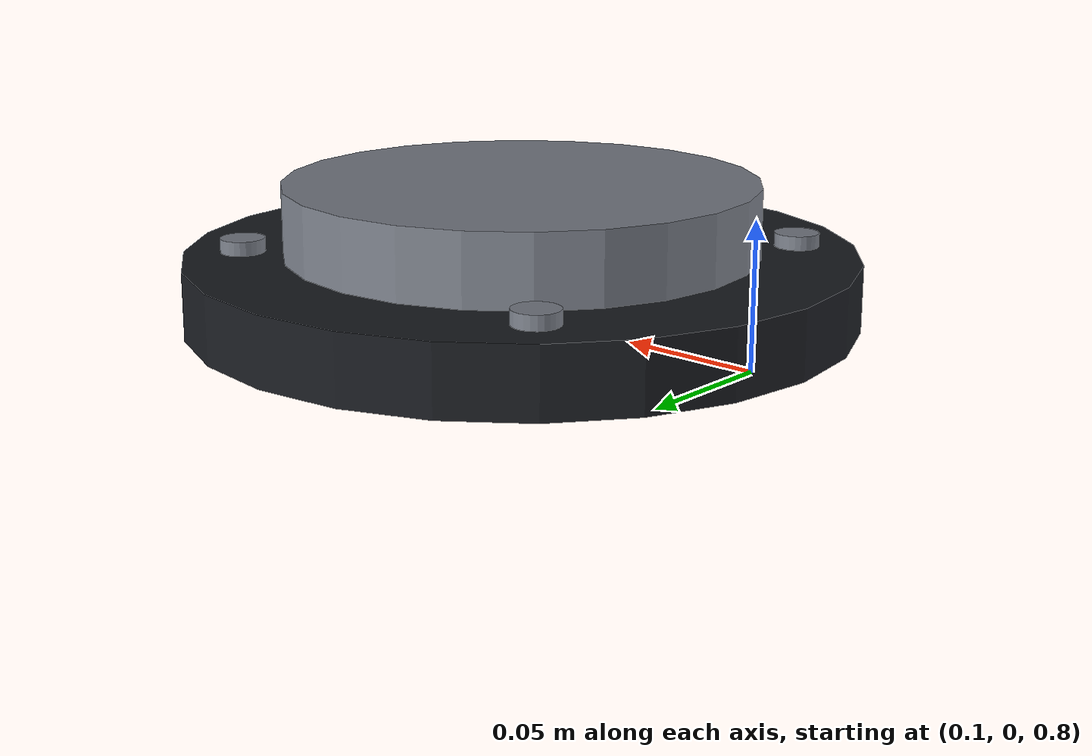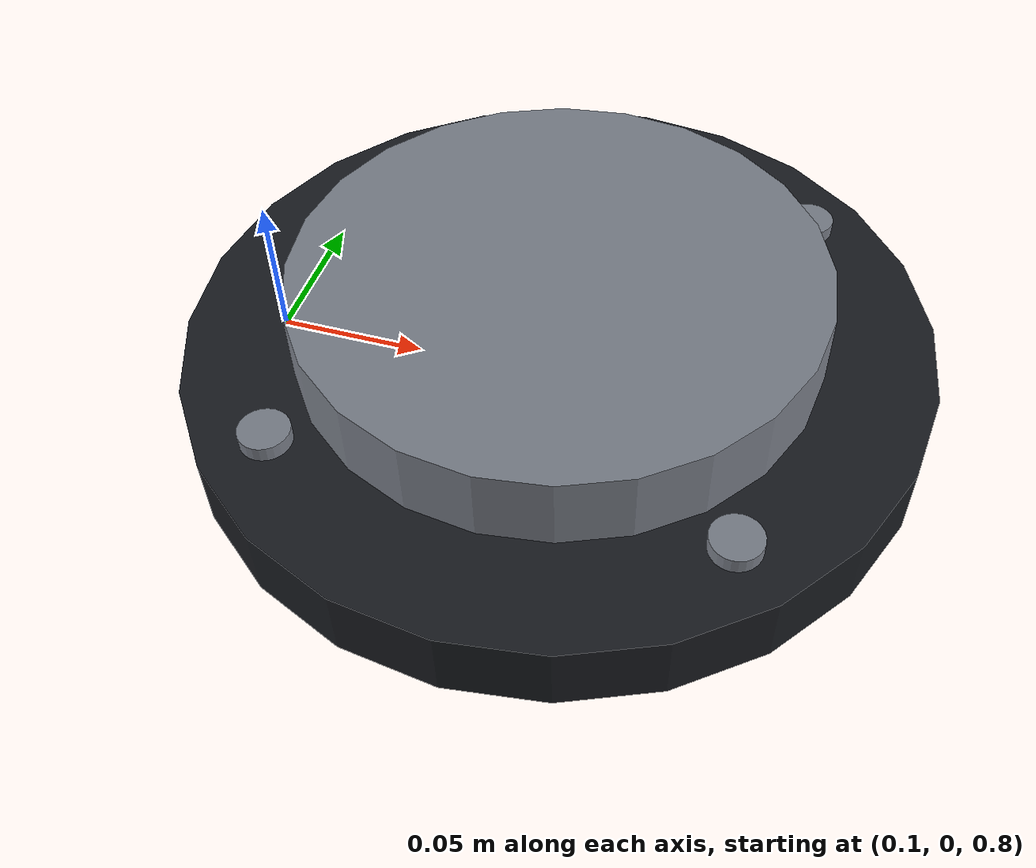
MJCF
<mujoco model="nero_table_mount">
  <asset>
    <material name="mount_dark" rgba="0.10 0.11 0.13 1" specular="0.35" shininess="0.25"/>
    <material name="mount_metal" rgba="0.48 0.50 0.54 1" specular="0.65" shininess="0.45"/>
  </asset>
  <worldbody>
    <!-- The x / z offsets preserve Nero7's previously validated NullMount transform. -->
    <body name="base" pos="0 0 0">
      <body name="lower_plate" pos="0.2 0 0.813">
        <geom name="lower_plate_visual" type="cylinder" size="0.12 0.012"
              material="mount_dark" contype="0" conaffinity="0" group="1"/>
      </body>
      <body name="mount_collar" pos="0.2 0 0.8375">
        <geom name="mount_collar_collision" type="cylinder" size="0.085 0.0125"
              material="mount_metal" friction="1 0.005 0.0001" group="0"/>
        <geom name="mount_collar_visual" type="cylinder" size="0.085 0.0125"
              material="mount_metal" contype="0" conaffinity="0" group="1"/>
      </body>
      <body name="bolt_front" pos="0.27 -0.07 0.826">
        <geom name="bolt_front_visual" type="cylinder" size="0.008 0.004"
              material="mount_metal" contype="0" conaffinity="0" group="1"/>
      </body>
      <body name="bolt_rear" pos="0.13 0.07 0.826">
        <geom name="bolt_rear_visual" type="cylinder" size="0.008 0.004"
              material="mount_metal" contype="0" conaffinity="0" group="1"/>
      </body>
      <body name="bolt_left" pos="0.13 -0.07 0.826">
        <geom name="bolt_left_visual" type="cylinder" size="0.008 0.004"
              material="mount_metal" contype="0" conaffinity="0" group="1"/>
      </body>
      <body name="bolt_right" pos="0.27 0.07 0.826">
        <geom name="bolt_right_visual" type="cylinder" size="0.008 0.004"
              material="mount_metal" contype="0" conaffinity="0" group="1"/>
      </body>
    </body>
  </worldbody>
</mujoco>
